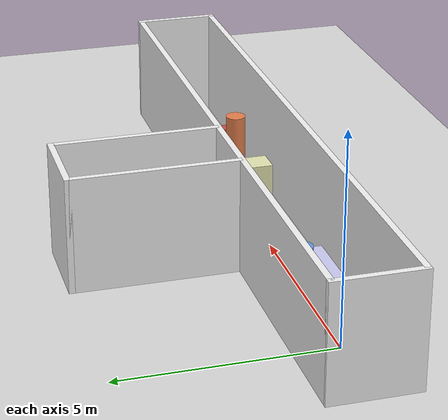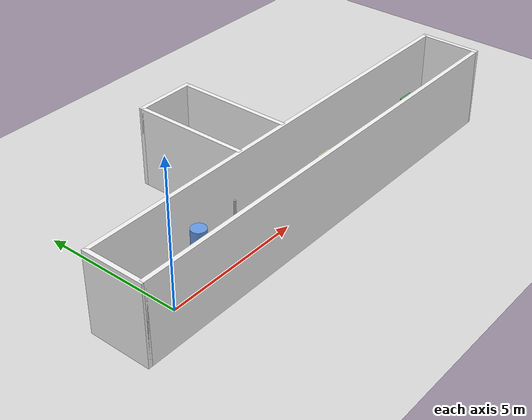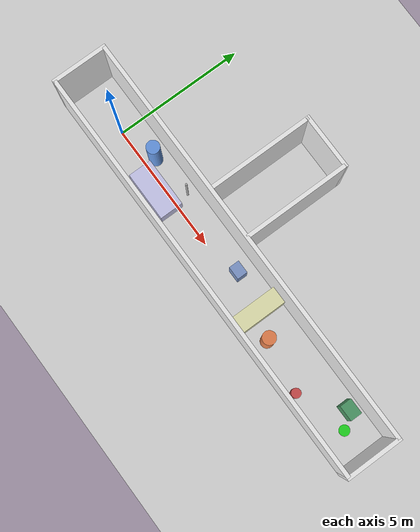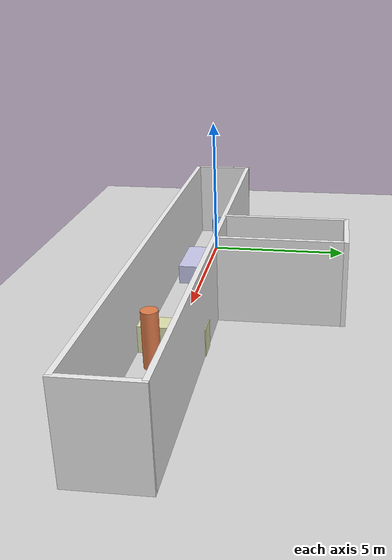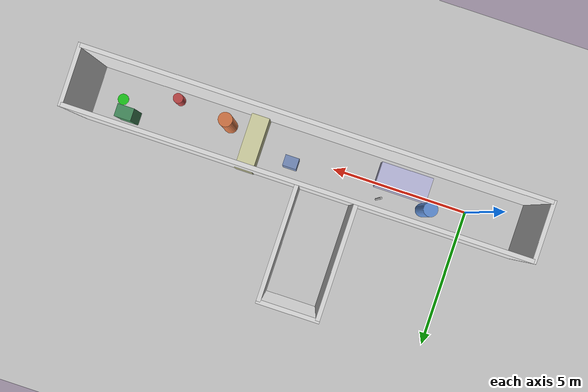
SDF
<?xml version="1.0"?>
<sdf version="1.9">
  <world name="hospital_corridor">

    <!-- ── Physics + required plugins ────────────────────────────────────────── -->
    <physics name="default" type="ignored">
      <max_step_size>0.001</max_step_size>
      <real_time_factor>1.0</real_time_factor>
      <real_time_update_rate>1000</real_time_update_rate>
    </physics>

    <plugin filename="gz-sim-physics-system"
            name="gz::sim::systems::Physics"/>
    <plugin filename="gz-sim-user-commands-system"
            name="gz::sim::systems::UserCommands"/>
    <plugin filename="gz-sim-scene-broadcaster-system"
            name="gz::sim::systems::SceneBroadcaster"/>
    <plugin filename="gz-sim-sensors-system"
            name="gz::sim::systems::Sensors">
      <render_engine>ogre2</render_engine>
    </plugin>
    <plugin filename="gz-sim-imu-system"
            name="gz::sim::systems::Imu"/>
    <plugin filename="gz-sim-contact-system"
            name="gz::sim::systems::Contact"/>

    <!-- ── Lighting ───────────────────────────────────────────────────────────── -->
    <light type="directional" name="sun">
      <cast_shadows>true</cast_shadows>
      <pose>0 0 10 0 0 0</pose>
      <diffuse>0.85 0.85 0.85 1</diffuse>
      <specular>0.2 0.2 0.2 1</specular>
      <direction>-0.5 0.1 -0.9</direction>
      <attenuation>
        <range>1000</range>
        <constant>0.9</constant>
        <linear>0.01</linear>
        <quadratic>0.001</quadratic>
      </attenuation>
    </light>

    <!-- Overhead fluorescent strip (hospital ambience) -->
    <light type="point" name="ceiling_strip_1">
      <pose>5 0 2.70 0 0 0</pose>
      <diffuse>0.95 0.95 1.0 1</diffuse>
      <specular>0.1 0.1 0.1 1</specular>
      <attenuation><range>15</range><constant>0.5</constant><linear>0.05</linear><quadratic>0.01</quadratic></attenuation>
      <cast_shadows>false</cast_shadows>
    </light>
    <light type="point" name="ceiling_strip_2">
      <pose>10 0 2.70 0 0 0</pose>
      <diffuse>0.95 0.95 1.0 1</diffuse>
      <specular>0.1 0.1 0.1 1</specular>
      <attenuation><range>15</range><constant>0.5</constant><linear>0.05</linear><quadratic>0.01</quadratic></attenuation>
      <cast_shadows>false</cast_shadows>
    </light>

    <!-- ── Ground plane (hospital floor: light grey tile) ─────────────────────── -->
    <model name="ground_plane">
      <static>true</static>
      <link name="link">
        <collision name="collision">
          <geometry><plane><normal>0 0 1</normal><size>50 20</size></plane></geometry>
          <surface><friction><ode><mu>0.9</mu><mu2>0.9</mu2></ode></friction></surface>
        </collision>
        <visual name="visual">
          <geometry><plane><normal>0 0 1</normal><size>50 20</size></plane></geometry>
          <material>
            <ambient>0.85 0.85 0.85 1</ambient>
            <diffuse>0.85 0.85 0.85 1</diffuse>
          </material>
        </visual>
      </link>
    </model>

    <!-- ── Wall macro (static, white, h=2.80 m) ──────────────────────────────── -->
    <!-- All walls defined as individual models for clarity -->

    <!-- South corridor wall (y = -1.0, runs x: -2..14) -->
    <model name="wall_south">
      <static>true</static>
      <pose>6 -1.0 1.40 0 0 0</pose>
      <link name="link">
        <collision name="col"><geometry><box><size>16 0.15 2.80</size></box></geometry></collision>
        <visual name="vis">
          <geometry><box><size>16 0.15 2.80</size></box></geometry>
          <material><ambient>0.95 0.95 0.95 1</ambient><diffuse>0.95 0.95 0.95 1</diffuse></material>
        </visual>
      </link>
    </model>

    <!-- North corridor wall (y = +1.0, runs x: -2..14) -->
    <model name="wall_north">
      <static>true</static>
      <pose>6 1.0 1.40 0 0 0</pose>
      <link name="link">
        <collision name="col"><geometry><box><size>16 0.15 2.80</size></box></geometry></collision>
        <visual name="vis">
          <geometry><box><size>16 0.15 2.80</size></box></geometry>
          <material><ambient>0.95 0.95 0.95 1</ambient><diffuse>0.95 0.95 0.95 1</diffuse></material>
        </visual>
      </link>
    </model>

    <!-- West end cap (x = -2.0) -->
    <model name="wall_west">
      <static>true</static>
      <pose>-2.0 0 1.40 0 0 0</pose>
      <link name="link">
        <collision name="col"><geometry><box><size>0.15 2.15 2.80</size></box></geometry></collision>
        <visual name="vis">
          <geometry><box><size>0.15 2.15 2.80</size></box></geometry>
          <material><ambient>0.95 0.95 0.95 1</ambient><diffuse>0.95 0.95 0.95 1</diffuse></material>
        </visual>
      </link>
    </model>

    <!-- East end cap (x = +14.0) -->
    <model name="wall_east">
      <static>true</static>
      <pose>14.0 0 1.40 0 0 0</pose>
      <link name="link">
        <collision name="col"><geometry><box><size>0.15 2.15 2.80</size></box></geometry></collision>
        <visual name="vis">
          <geometry><box><size>0.15 2.15 2.80</size></box></geometry>
          <material><ambient>0.95 0.95 0.95 1</ambient><diffuse>0.95 0.95 0.95 1</diffuse></material>
        </visual>
      </link>
    </model>

    <!-- North branch corridor (y: 1.0..5.0, x: 4..6) — T-junction -->
    <model name="wall_branch_west">
      <static>true</static>
      <pose>4.0 3.0 1.40 0 0 0</pose>
      <link name="link">
        <collision name="col"><geometry><box><size>0.15 4.0 2.80</size></box></geometry></collision>
        <visual name="vis">
          <geometry><box><size>0.15 4.0 2.80</size></box></geometry>
          <material><ambient>0.95 0.95 0.95 1</ambient><diffuse>0.95 0.95 0.95 1</diffuse></material>
        </visual>
      </link>
    </model>
    <model name="wall_branch_east">
      <static>true</static>
      <pose>6.0 3.0 1.40 0 0 0</pose>
      <link name="link">
        <collision name="col"><geometry><box><size>0.15 4.0 2.80</size></box></geometry></collision>
        <visual name="vis">
          <geometry><box><size>0.15 4.0 2.80</size></box></geometry>
          <material><ambient>0.95 0.95 0.95 1</ambient><diffuse>0.95 0.95 0.95 1</diffuse></material>
        </visual>
      </link>
    </model>
    <model name="wall_branch_north">
      <static>true</static>
      <pose>5.0 5.0 1.40 0 0 0</pose>
      <link name="link">
        <collision name="col"><geometry><box><size>2.15 0.15 2.80</size></box></geometry></collision>
        <visual name="vis">
          <geometry><box><size>2.15 0.15 2.80</size></box></geometry>
          <material><ambient>0.95 0.95 0.95 1</ambient><diffuse>0.95 0.95 0.95 1</diffuse></material>
        </visual>
      </link>
    </model>

    <!-- ── Obstacles ──────────────────────────────────────────────────────────── -->

    <!-- Hospital bed (1.90 × 0.90 × 0.65 m) on south side, x≈2 -->
    <model name="hospital_bed_1">
      <static>true</static>
      <pose>2.5 -0.30 0.325 0 0 0</pose>
      <link name="link">
        <collision name="col"><geometry><box><size>1.90 0.90 0.65</size></box></geometry></collision>
        <visual name="vis">
          <geometry><box><size>1.90 0.90 0.65</size></box></geometry>
          <material><ambient>0.8 0.8 0.95 1</ambient><diffuse>0.8 0.8 0.95 1</diffuse></material>
        </visual>
      </link>
    </model>

    <!-- Medical cart (0.50 × 0.40 × 0.90 m) mid-corridor, x≈6 -->
    <model name="medical_cart_1">
      <static>true</static>
      <pose>6.5 0.30 0.45 0 0 0</pose>
      <link name="link">
        <collision name="col"><geometry><box><size>0.50 0.40 0.90</size></box></geometry></collision>
        <visual name="vis">
          <geometry><box><size>0.50 0.40 0.90</size></box></geometry>
          <material><ambient>0.5 0.6 0.8 1</ambient><diffuse>0.5 0.6 0.8 1</diffuse></material>
        </visual>
      </link>
    </model>

    <!-- Gurney / stretcher (2.00 × 0.65 × 0.85 m), x≈8, north side -->
    <model name="gurney_1">
      <static>true</static>
      <pose>8.0 0.10 0.425 0 0 1.5708</pose>
      <link name="link">
        <collision name="col"><geometry><box><size>2.00 0.65 0.85</size></box></geometry></collision>
        <visual name="vis">
          <geometry><box><size>2.00 0.65 0.85</size></box></geometry>
          <material><ambient>0.9 0.9 0.7 1</ambient><diffuse>0.9 0.9 0.7 1</diffuse></material>
        </visual>
      </link>
    </model>

    <!-- IV drip stand (cylinder: r=0.04, h=1.70), x≈3, north side -->
    <model name="iv_stand_1">
      <static>true</static>
      <pose>3.2 0.55 0.85 0 0 0</pose>
      <link name="link">
        <collision name="col"><geometry><cylinder><radius>0.04</radius><length>1.70</length></cylinder></geometry></collision>
        <visual name="vis">
          <geometry><cylinder><radius>0.04</radius><length>1.70</length></cylinder></geometry>
          <material><ambient>0.7 0.7 0.7 1</ambient><diffuse>0.7 0.7 0.7 1</diffuse></material>
        </visual>
      </link>
    </model>

    <!-- Waste bin (cylinder: r=0.18, h=0.60), x≈11 -->
    <model name="waste_bin_1">
      <static>true</static>
      <pose>11.0 -0.60 0.30 0 0 0</pose>
      <link name="link">
        <collision name="col"><geometry><cylinder><radius>0.18</radius><length>0.60</length></cylinder></geometry></collision>
        <visual name="vis">
          <geometry><cylinder><radius>0.18</radius><length>0.60</length></cylinder></geometry>
          <material><ambient>0.8 0.3 0.3 1</ambient><diffuse>0.8 0.3 0.3 1</diffuse></material>
        </visual>
      </link>
    </model>

    <!-- Equipment trolley near goal -->
    <model name="equipment_trolley">
      <static>true</static>
      <pose>12.5 0.50 0.55 0 0 0</pose>
      <link name="link">
        <collision name="col"><geometry><box><size>0.60 0.45 1.10</size></box></geometry></collision>
        <visual name="vis">
          <geometry><box><size>0.60 0.45 1.10</size></box></geometry>
          <material><ambient>0.3 0.6 0.4 1</ambient><diffuse>0.3 0.6 0.4 1</diffuse></material>
        </visual>
      </link>
    </model>

    <!-- ── Static human figures (cylinders: r=0.25, h=1.75) ─────────────────── -->

    <!-- Person 1: standing near bed, x≈1.5 -->
    <model name="person_1">
      <static>true</static>
      <pose>1.5 0.40 0.875 0 0 0</pose>
      <link name="link">
        <collision name="col"><geometry><cylinder><radius>0.25</radius><length>1.75</length></cylinder></geometry></collision>
        <visual name="vis">
          <geometry><cylinder><radius>0.25</radius><length>1.75</length></cylinder></geometry>
          <material><ambient>0.4 0.6 0.9 1</ambient><diffuse>0.4 0.6 0.9 1</diffuse></material>
        </visual>
      </link>
    </model>

    <!-- Person 2: walking (static for demo), x≈9 -->
    <model name="person_2">
      <static>true</static>
      <pose>9.0 -0.30 0.875 0 0 0</pose>
      <link name="link">
        <collision name="col"><geometry><cylinder><radius>0.25</radius><length>1.75</length></cylinder></geometry></collision>
        <visual name="vis">
          <geometry><cylinder><radius>0.25</radius><length>1.75</length></cylinder></geometry>
          <material><ambient>0.9 0.5 0.3 1</ambient><diffuse>0.9 0.5 0.3 1</diffuse></material>
        </visual>
      </link>
    </model>

    <!-- ── Goal marker (visual only, no collision) ───────────────────────────── -->
    <model name="goal_marker">
      <static>true</static>
      <pose>13.0 0.0 0.01 0 0 0</pose>
      <link name="link">
        <visual name="vis">
          <geometry><cylinder><radius>0.20</radius><length>0.02</length></cylinder></geometry>
          <material>
            <ambient>0.0 0.9 0.0 0.8</ambient>
            <diffuse>0.0 0.9 0.0 0.8</diffuse>
            <emissive>0.0 0.5 0.0 1</emissive>
          </material>
        </visual>
      </link>
    </model>

  </world>
</sdf>
